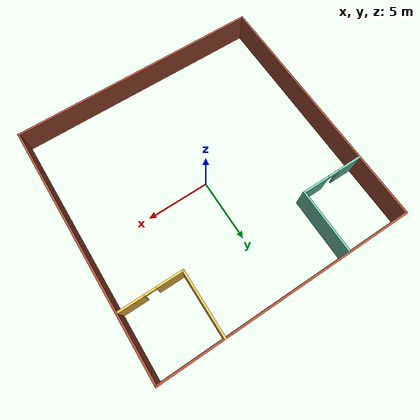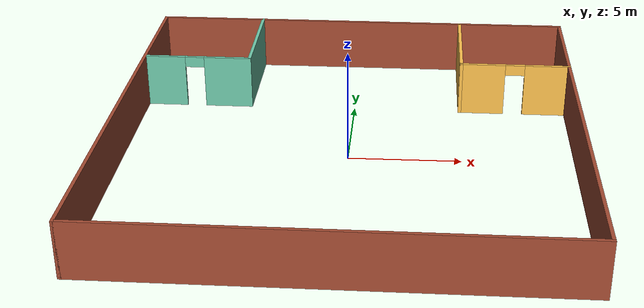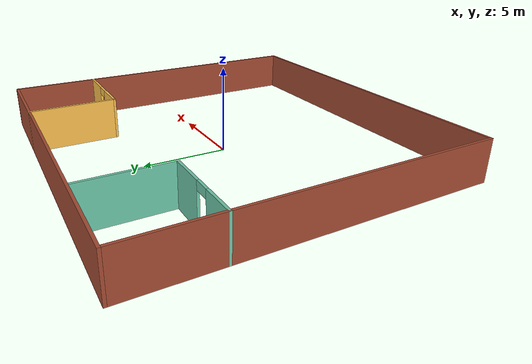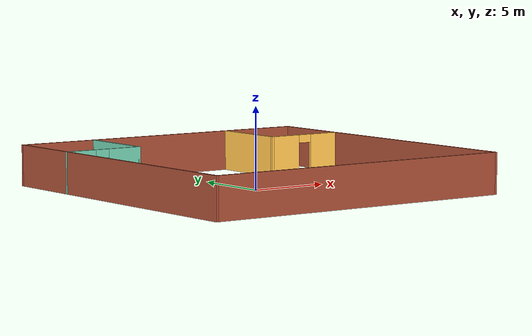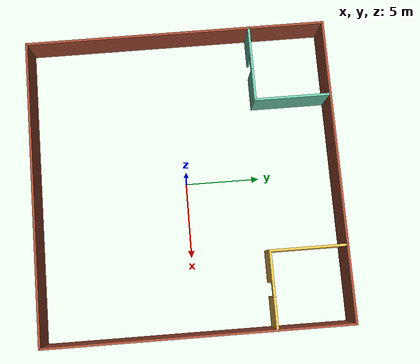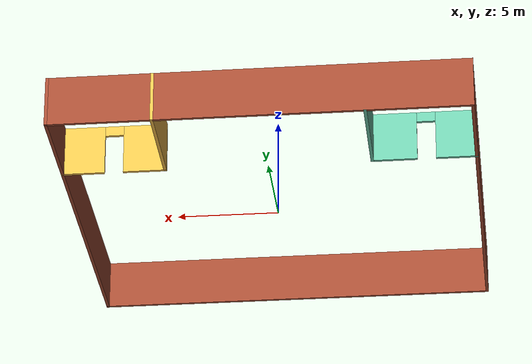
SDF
<?xml version='1.0'?>
<sdf version='1.6'>
  <model name='Building'>
    <pose frame=''>0 0 0 0 -0 0</pose>
    <link name='Wall_10'>
      <collision name='Wall_10_Collision'>
        <geometry>
          <box>
            <size>20.15 0.15 2.5</size>
          </box>
        </geometry>
        <pose frame=''>0 0 1.25 0 -0 0</pose>
      </collision>
      <visual name='Wall_10_Visual'>
        <pose frame=''>0 0 1.25 0 -0 0</pose>
        <geometry>
          <box>
            <size>20.15 0.15 2.5</size>
          </box>
        </geometry>
        <material>
          <script>
            <uri>file://media/materials/scripts/gazebo.material</uri>
            <name>Gazebo/Bricks</name>
          </script>
          <ambient>1 1 1 1</ambient>
        </material>
        <meta>
          <layer>0</layer>
        </meta>
      </visual>
      <pose frame=''>0 -10 0 0 -0 0</pose>
    </link>
    <link name='Wall_11'>
      <collision name='Wall_11_Collision'>
        <geometry>
          <box>
            <size>20.15 0.15 2.5</size>
          </box>
        </geometry>
        <pose frame=''>0 0 1.25 0 -0 0</pose>
      </collision>
      <visual name='Wall_11_Visual'>
        <pose frame=''>0 0 1.25 0 -0 0</pose>
        <geometry>
          <box>
            <size>20.15 0.15 2.5</size>
          </box>
        </geometry>
        <material>
          <script>
            <uri>file://media/materials/scripts/gazebo.material</uri>
            <name>Gazebo/Bricks</name>
          </script>
          <ambient>1 1 1 1</ambient>
        </material>
        <meta>
          <layer>0</layer>
        </meta>
      </visual>
      <pose frame=''>10 0 0 0 -0 1.5708</pose>
    </link>
    <link name='Wall_12'>
      <collision name='Wall_12_Collision'>
        <geometry>
          <box>
            <size>20.15 0.15 2.5</size>
          </box>
        </geometry>
        <pose frame=''>0 0 1.25 0 -0 0</pose>
      </collision>
      <visual name='Wall_12_Visual'>
        <pose frame=''>0 0 1.25 0 -0 0</pose>
        <geometry>
          <box>
            <size>20.15 0.15 2.5</size>
          </box>
        </geometry>
        <material>
          <script>
            <uri>file://media/materials/scripts/gazebo.material</uri>
            <name>Gazebo/Bricks</name>
          </script>
          <ambient>1 1 1 1</ambient>
        </material>
        <meta>
          <layer>0</layer>
        </meta>
      </visual>
      <pose frame=''>0 10 0 0 -0 3.14159</pose>
    </link>
    <link name='Wall_13'>
      <collision name='Wall_13_Collision'>
        <geometry>
          <box>
            <size>20.15 0.15 2.5</size>
          </box>
        </geometry>
        <pose frame=''>0 0 1.25 0 -0 0</pose>
      </collision>
      <visual name='Wall_13_Visual'>
        <pose frame=''>0 0 1.25 0 -0 0</pose>
        <geometry>
          <box>
            <size>20.15 0.15 2.5</size>
          </box>
        </geometry>
        <material>
          <script>
            <uri>file://media/materials/scripts/gazebo.material</uri>
            <name>Gazebo/Bricks</name>
          </script>
          <ambient>1 1 1 1</ambient>
        </material>
        <meta>
          <layer>0</layer>
        </meta>
      </visual>
      <pose frame=''>-10 0 0 0 -0 -1.5708</pose>
    </link>
    <link name='Wall_2'>
      <pose frame=''>7.5 5 0 0 -0 3.14159</pose>
      <visual name='Wall_2_Visual_0'>
        <pose frame=''>-1.5125 0 1.25 0 -0 0</pose>
        <geometry>
          <box>
            <size>2.125 0.15 2.5</size>
          </box>
        </geometry>
        <material>
          <script>
            <uri>file://media/materials/scripts/gazebo.material</uri>
            <name>Gazebo/Grey</name>
          </script>
          <ambient>1 0.764706 0.305882 1</ambient>
        </material>
        <meta>
          <layer>0</layer>
        </meta>
      </visual>
      <collision name='Wall_2_Collision_0'>
        <geometry>
          <box>
            <size>2.125 0.15 2.5</size>
          </box>
        </geometry>
        <pose frame=''>-1.5125 0 1.25 0 -0 0</pose>
      </collision>
      <visual name='Wall_2_Visual_1'>
        <pose frame=''>1.5125 0 1.25 0 -0 0</pose>
        <geometry>
          <box>
            <size>2.125 0.15 2.5</size>
          </box>
        </geometry>
        <material>
          <script>
            <uri>file://media/materials/scripts/gazebo.material</uri>
            <name>Gazebo/Grey</name>
          </script>
          <ambient>1 0.764706 0.305882 1</ambient>
        </material>
        <meta>
          <layer>0</layer>
        </meta>
      </visual>
      <collision name='Wall_2_Collision_1'>
        <geometry>
          <box>
            <size>2.125 0.15 2.5</size>
          </box>
        </geometry>
        <pose frame=''>1.5125 0 1.25 0 -0 0</pose>
      </collision>
      <visual name='Wall_2_Visual_2'>
        <pose frame=''>-0 0 2.25 0 -0 0</pose>
        <geometry>
          <box>
            <size>0.9 0.15 0.5</size>
          </box>
        </geometry>
        <material>
          <script>
            <uri>file://media/materials/scripts/gazebo.material</uri>
            <name>Gazebo/Grey</name>
          </script>
          <ambient>1 0.764706 0.305882 1</ambient>
        </material>
        <meta>
          <layer>0</layer>
        </meta>
      </visual>
      <collision name='Wall_2_Collision_2'>
        <geometry>
          <box>
            <size>0.9 0.15 0.5</size>
          </box>
        </geometry>
        <pose frame=''>-0 0 2.25 0 -0 0</pose>
      </collision>
    </link>
    <link name='Wall_3'>
      <collision name='Wall_3_Collision'>
        <geometry>
          <box>
            <size>5.15 0.15 2.5</size>
          </box>
        </geometry>
        <pose frame=''>0 0 1.25 0 -0 0</pose>
      </collision>
      <visual name='Wall_3_Visual'>
        <pose frame=''>0 0 1.25 0 -0 0</pose>
        <geometry>
          <box>
            <size>5.15 0.15 2.5</size>
          </box>
        </geometry>
        <material>
          <script>
            <uri>file://media/materials/scripts/gazebo.material</uri>
            <name>Gazebo/Grey</name>
          </script>
          <ambient>1 0.764706 0.305882 1</ambient>
        </material>
        <meta>
          <layer>0</layer>
        </meta>
      </visual>
      <pose frame=''>5 7.5 0 0 -0 1.5708</pose>
    </link>
    <link name='Wall_6'>
      <pose frame=''>-7.5 5 0 0 -0 0</pose>
      <visual name='Wall_6_Visual_0'>
        <pose frame=''>-1.57098 0 1.25 0 -0 0</pose>
        <geometry>
          <box>
            <size>2.00805 0.15 2.5</size>
          </box>
        </geometry>
        <material>
          <script>
            <uri>file://media/materials/scripts/gazebo.material</uri>
            <name>Gazebo/Grey</name>
          </script>
          <ambient>0.435294 0.796078 0.67451 1</ambient>
        </material>
        <meta>
          <layer>0</layer>
        </meta>
      </visual>
      <collision name='Wall_6_Collision_0'>
        <geometry>
          <box>
            <size>2.00805 0.15 2.5</size>
          </box>
        </geometry>
        <pose frame=''>-1.57098 0 1.25 0 -0 0</pose>
      </collision>
      <visual name='Wall_6_Visual_1'>
        <pose frame=''>1.45402 0 1.25 0 -0 0</pose>
        <geometry>
          <box>
            <size>2.24195 0.15 2.5</size>
          </box>
        </geometry>
        <material>
          <script>
            <uri>file://media/materials/scripts/gazebo.material</uri>
            <name>Gazebo/Grey</name>
          </script>
          <ambient>0.435294 0.796078 0.67451 1</ambient>
        </material>
        <meta>
          <layer>0</layer>
        </meta>
      </visual>
      <collision name='Wall_6_Collision_1'>
        <geometry>
          <box>
            <size>2.24195 0.15 2.5</size>
          </box>
        </geometry>
        <pose frame=''>1.45402 0 1.25 0 -0 0</pose>
      </collision>
      <visual name='Wall_6_Visual_2'>
        <pose frame=''>-0.116954 0 2.25 0 -0 0</pose>
        <geometry>
          <box>
            <size>0.9 0.15 0.5</size>
          </box>
        </geometry>
        <material>
          <script>
            <uri>file://media/materials/scripts/gazebo.material</uri>
            <name>Gazebo/Grey</name>
          </script>
          <ambient>0.435294 0.796078 0.67451 1</ambient>
        </material>
        <meta>
          <layer>0</layer>
        </meta>
      </visual>
      <collision name='Wall_6_Collision_2'>
        <geometry>
          <box>
            <size>0.9 0.15 0.5</size>
          </box>
        </geometry>
        <pose frame=''>-0.116954 0 2.25 0 -0 0</pose>
      </collision>
    </link>
    <link name='Wall_7'>
      <collision name='Wall_7_Collision'>
        <geometry>
          <box>
            <size>5.15 0.15 2.5</size>
          </box>
        </geometry>
        <pose frame=''>0 0 1.25 0 -0 0</pose>
      </collision>
      <visual name='Wall_7_Visual'>
        <pose frame=''>0 0 1.25 0 -0 0</pose>
        <geometry>
          <box>
            <size>5.15 0.15 2.5</size>
          </box>
        </geometry>
        <material>
          <script>
            <uri>file://media/materials/scripts/gazebo.material</uri>
            <name>Gazebo/Grey</name>
          </script>
          <ambient>0.435294 0.796078 0.67451 1</ambient>
        </material>
        <meta>
          <layer>0</layer>
        </meta>
      </visual>
      <pose frame=''>-5 7.5 0 0 -0 1.5708</pose>
    </link>
    <static>1</static>
  </model>
</sdf>
